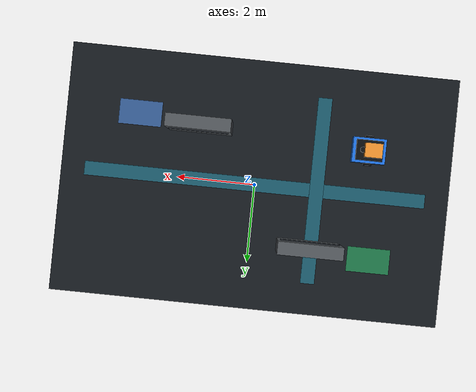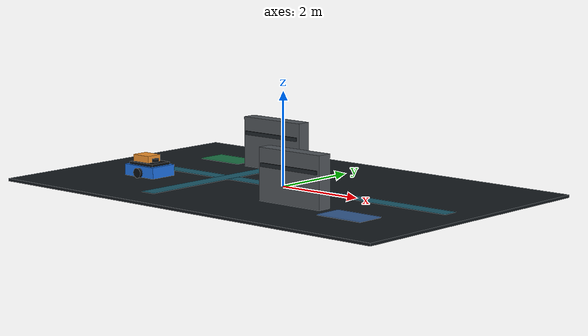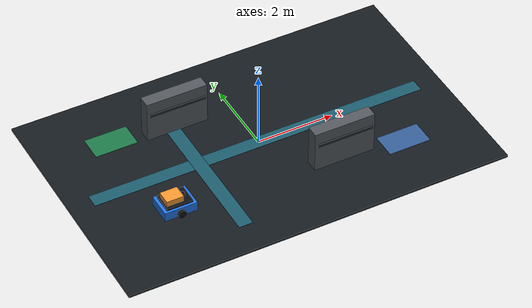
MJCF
<mujoco model="portfolio_seer_warehouse">
  <compiler angle="radian" autolimits="true" />
  <option timestep="0.01" gravity="0 0 -9.81" />

  <asset>
    <material name="floor_mat" rgba="0.08 0.1 0.12 1" />
    <material name="lane_mat" rgba="0.1 0.35 0.42 1" />
    <material name="robot_blue" rgba="0.12 0.45 0.9 1" />
    <material name="robot_dark" rgba="0.04 0.05 0.06 1" />
    <material name="shelf_mat" rgba="0.32 0.34 0.36 1" />
    <material name="tote_mat" rgba="0.95 0.58 0.18 1" />
    <material name="zone_pick" rgba="0.18 0.8 0.45 0.55" />
    <material name="zone_drop" rgba="0.35 0.62 1 0.55" />
  </asset>

  <worldbody>
    <light name="key" pos="0 -3 6" dir="0 0 -1" diffuse="0.9 0.95 1" />
    <camera name="overview" pos="4 -7 5" xyaxes="0.86 0.5 0 -0.32 0.55 0.78" />

    <geom name="warehouse_floor" type="box" pos="0 0 -0.03" size="5 3.2 0.03" material="floor_mat" />
    <geom name="main_lane" type="box" pos="0 0 0.002" size="4.4 0.18 0.004" material="lane_mat" contype="0" conaffinity="0" />
    <geom name="cross_lane" type="box" pos="-1.6 0 0.004" size="0.18 2.4 0.004" material="lane_mat" contype="0" conaffinity="0" />

    <geom name="pickup_zone" type="box" pos="-3.1 1.65 0.01" size="0.55 0.32 0.01" material="zone_pick" contype="0" conaffinity="0" />
    <geom name="dropoff_zone" type="box" pos="3.1 -1.55 0.01" size="0.55 0.32 0.01" material="zone_drop" contype="0" conaffinity="0" />

    <body name="left_shelf" pos="-1.5 1.45 0.55">
      <geom type="box" size="0.8 0.16 0.55" material="shelf_mat" />
      <geom type="box" pos="0 0 0.2" size="0.74 0.19 0.04" rgba="0.12 0.14 0.16 1" />
    </body>
    <body name="right_shelf" pos="1.5 -1.35 0.55">
      <geom type="box" size="0.8 0.16 0.55" material="shelf_mat" />
      <geom type="box" pos="0 0 0.2" size="0.74 0.19 0.04" rgba="0.12 0.14 0.16 1" />
    </body>

    <body name="seer_amr" pos="-2.8 -1.15 0.18">
      <freejoint />
      <geom name="base" type="box" size="0.42 0.32 0.12" material="robot_blue" density="450" />
      <geom name="top_plate" type="box" pos="0 0 0.14" size="0.34 0.26 0.035" material="robot_dark" density="250" />
      <geom name="lidar" type="cylinder" pos="0.18 0 0.22" size="0.07 0.035" material="robot_dark" density="100" />
      <geom name="left_wheel" type="cylinder" pos="0 0.34 -0.03" quat="0.7071068 0.7071068 0 0" size="0.105 0.045" material="robot_dark" density="300" />
      <geom name="right_wheel" type="cylinder" pos="0 -0.34 -0.03" quat="0.7071068 0.7071068 0 0" size="0.105 0.045" material="robot_dark" density="300" />
      <geom name="payload_tote" type="box" pos="-0.08 0 0.24" size="0.22 0.18 0.08" material="tote_mat" density="120" />
    </body>
  </worldbody>
</mujoco>
